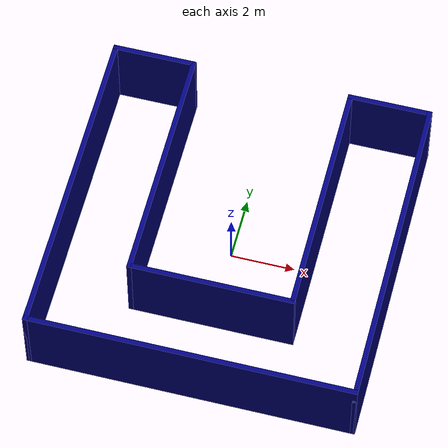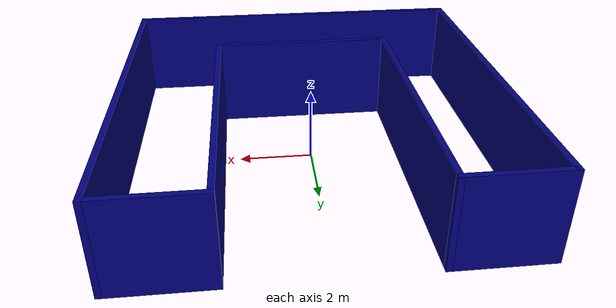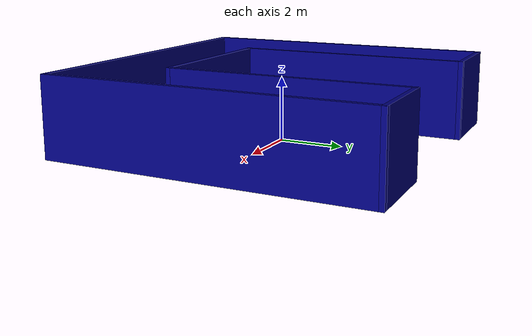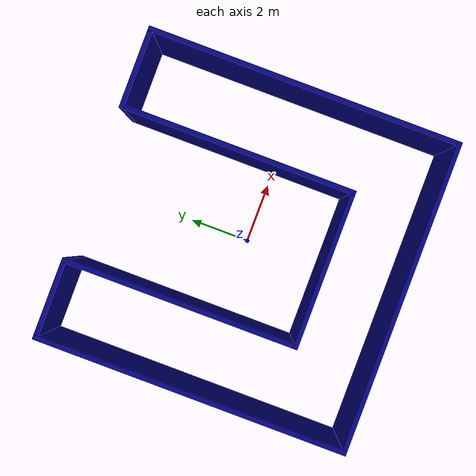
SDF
<?xml version='1.0'?>
<sdf version='1.6'>
  <model name='myBuilding'>
    <pose frame=''>0 0 0 0 -0 0</pose>
    <link name='Wall_10'>
      <collision name='Wall_10_Collision'>
        <geometry>
          <box>
            <size>10.15 0.15 2.5</size>
          </box>
        </geometry>
        <pose frame=''>0 0 1.25 0 -0 0</pose>
      </collision>
      <visual name='Wall_10_Visual'>
        <pose frame=''>0 0 1.25 0 -0 0</pose>
        <geometry>
          <box>
            <size>10.15 0.15 2.5</size>
          </box>
        </geometry>
        <material>
          <script>
            <uri>file://media/materials/scripts/gazebo.material</uri>
            <name>Gazebo/Grey</name>
          </script>
          <ambient>0 0 0.498039 1</ambient>
        </material>
      </visual>
      <pose frame=''>-5 0 0 0 0 -1.5708</pose>
    </link>
    <link name='Wall_12'>
      <collision name='Wall_12_Collision'>
        <geometry>
          <box>
            <size>10.15 0.15 2.5</size>
          </box>
        </geometry>
        <pose frame=''>0 0 1.25 0 -0 0</pose>
      </collision>
      <visual name='Wall_12_Visual'>
        <pose frame=''>0 0 1.25 0 -0 0</pose>
        <geometry>
          <box>
            <size>10.15 0.15 2.5</size>
          </box>
        </geometry>
        <material>
          <script>
            <uri>file://media/materials/scripts/gazebo.material</uri>
            <name>Gazebo/Grey</name>
          </script>
          <ambient>0 0 0.498039 1</ambient>
        </material>
      </visual>
      <pose frame=''>0 -5 0 0 -0 0</pose>
    </link>
    <link name='Wall_14'>
      <collision name='Wall_14_Collision'>
        <geometry>
          <box>
            <size>10.15 0.15 2.5</size>
          </box>
        </geometry>
        <pose frame=''>0 0 1.25 0 -0 0</pose>
      </collision>
      <visual name='Wall_14_Visual'>
        <pose frame=''>0 0 1.25 0 -0 0</pose>
        <geometry>
          <box>
            <size>10.15 0.15 2.5</size>
          </box>
        </geometry>
        <material>
          <script>
            <uri>file://media/materials/scripts/gazebo.material</uri>
            <name>Gazebo/Grey</name>
          </script>
          <ambient>0 0 0.498039 1</ambient>
        </material>
      </visual>
      <pose frame=''>5 0 0 0 -0 1.5708</pose>
    </link>
    <link name='Wall_15'>
      <collision name='Wall_15_Collision'>
        <geometry>
          <box>
            <size>2.65 0.15 2.5</size>
          </box>
        </geometry>
        <pose frame=''>0 0 1.25 0 -0 0</pose>
      </collision>
      <visual name='Wall_15_Visual'>
        <pose frame=''>0 0 1.25 0 -0 0</pose>
        <geometry>
          <box>
            <size>2.65 0.15 2.5</size>
          </box>
        </geometry>
        <material>
          <script>
            <uri>file://media/materials/scripts/gazebo.material</uri>
            <name>Gazebo/Grey</name>
          </script>
          <ambient>0 0 0.498039 1</ambient>
        </material>
      </visual>
      <pose frame=''>3.75 5 0 0 -0 3.14159</pose>
    </link>
    <link name='Wall_16'>
      <collision name='Wall_16_Collision'>
        <geometry>
          <box>
            <size>7.65 0.15 2.5</size>
          </box>
        </geometry>
        <pose frame=''>0 0 1.25 0 -0 0</pose>
      </collision>
      <visual name='Wall_16_Visual'>
        <pose frame=''>0 0 1.25 0 -0 0</pose>
        <geometry>
          <box>
            <size>7.65 0.15 2.5</size>
          </box>
        </geometry>
        <material>
          <script>
            <uri>file://media/materials/scripts/gazebo.material</uri>
            <name>Gazebo/Grey</name>
          </script>
          <ambient>0 0 0.498039 1</ambient>
        </material>
      </visual>
      <pose frame=''>2.5 1.25 0 0 0 -1.5708</pose>
    </link>
    <link name='Wall_17'>
      <collision name='Wall_17_Collision'>
        <geometry>
          <box>
            <size>5.15 0.15 2.5</size>
          </box>
        </geometry>
        <pose frame=''>0 0 1.25 0 -0 0</pose>
      </collision>
      <visual name='Wall_17_Visual'>
        <pose frame=''>0 0 1.25 0 -0 0</pose>
        <geometry>
          <box>
            <size>5.15 0.15 2.5</size>
          </box>
        </geometry>
        <material>
          <script>
            <uri>file://media/materials/scripts/gazebo.material</uri>
            <name>Gazebo/Grey</name>
          </script>
          <ambient>0 0 0.498039 1</ambient>
        </material>
      </visual>
      <pose frame=''>0 -2.5 0 0 -0 3.14159</pose>
    </link>
    <link name='Wall_18'>
      <collision name='Wall_18_Collision'>
        <geometry>
          <box>
            <size>7.65 0.15 2.5</size>
          </box>
        </geometry>
        <pose frame=''>0 0 1.25 0 -0 0</pose>
      </collision>
      <visual name='Wall_18_Visual'>
        <pose frame=''>0 0 1.25 0 -0 0</pose>
        <geometry>
          <box>
            <size>7.65 0.15 2.5</size>
          </box>
        </geometry>
        <material>
          <script>
            <uri>file://media/materials/scripts/gazebo.material</uri>
            <name>Gazebo/Grey</name>
          </script>
          <ambient>0 0 0.498039 1</ambient>
        </material>
      </visual>
      <pose frame=''>-2.5 1.25 0 0 -0 1.5708</pose>
    </link>
    <link name='Wall_20'>
      <collision name='Wall_20_Collision'>
        <geometry>
          <box>
            <size>2.65 0.15 2.5</size>
          </box>
        </geometry>
        <pose frame=''>0 0 1.25 0 -0 0</pose>
      </collision>
      <visual name='Wall_20_Visual'>
        <pose frame=''>0 0 1.25 0 -0 0</pose>
        <geometry>
          <box>
            <size>2.65 0.15 2.5</size>
          </box>
        </geometry>
        <material>
          <script>
            <uri>file://media/materials/scripts/gazebo.material</uri>
            <name>Gazebo/Grey</name>
          </script>
          <ambient>0 0 0.498039 1</ambient>
        </material>
      </visual>
      <pose frame=''>-3.75 5 0 0 -0 3.14159</pose>
    </link>
    <static>1</static>
  </model>
</sdf>
